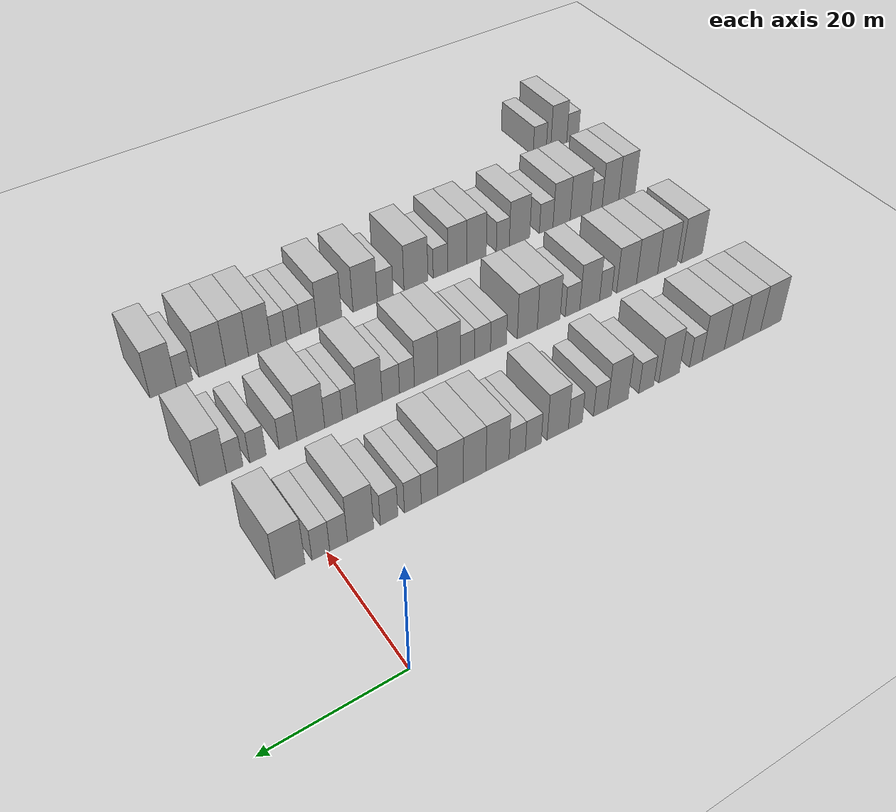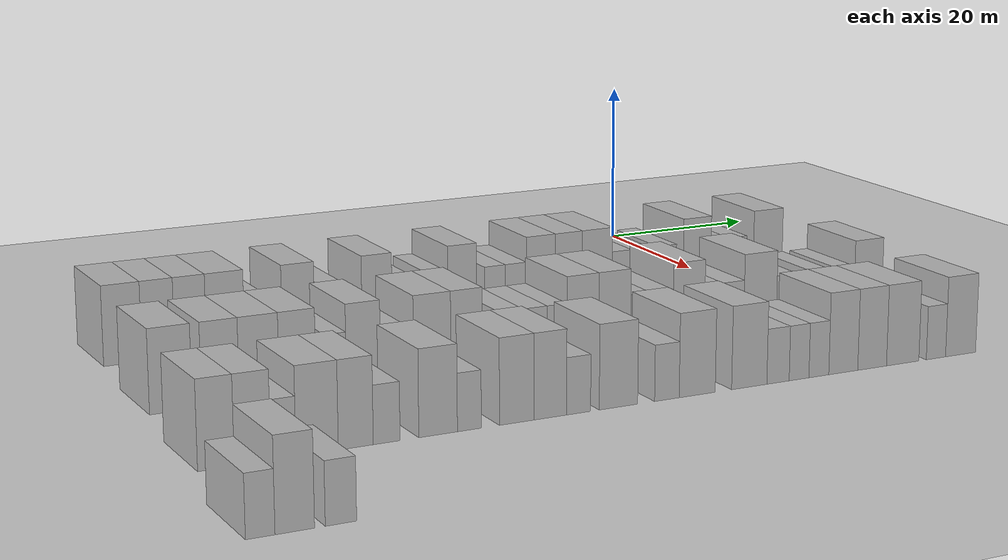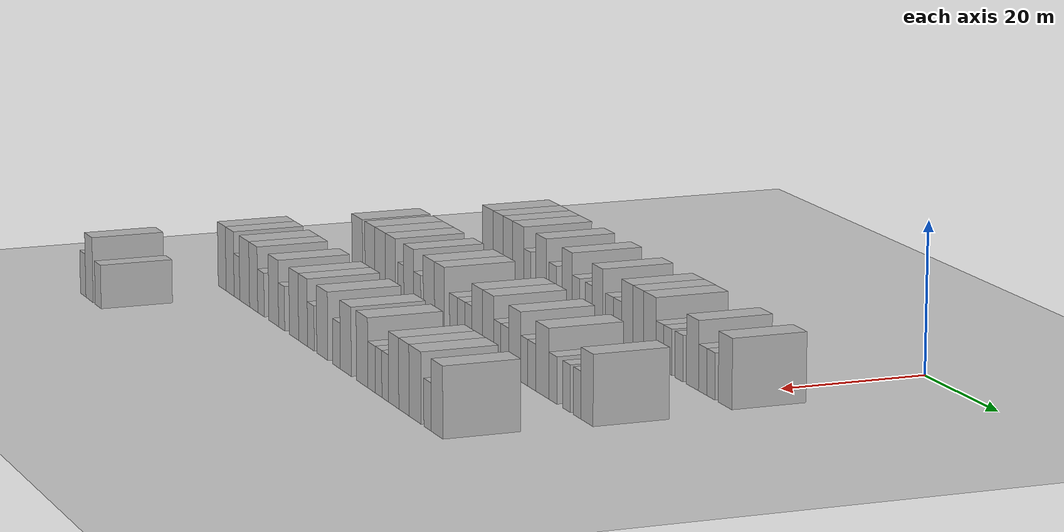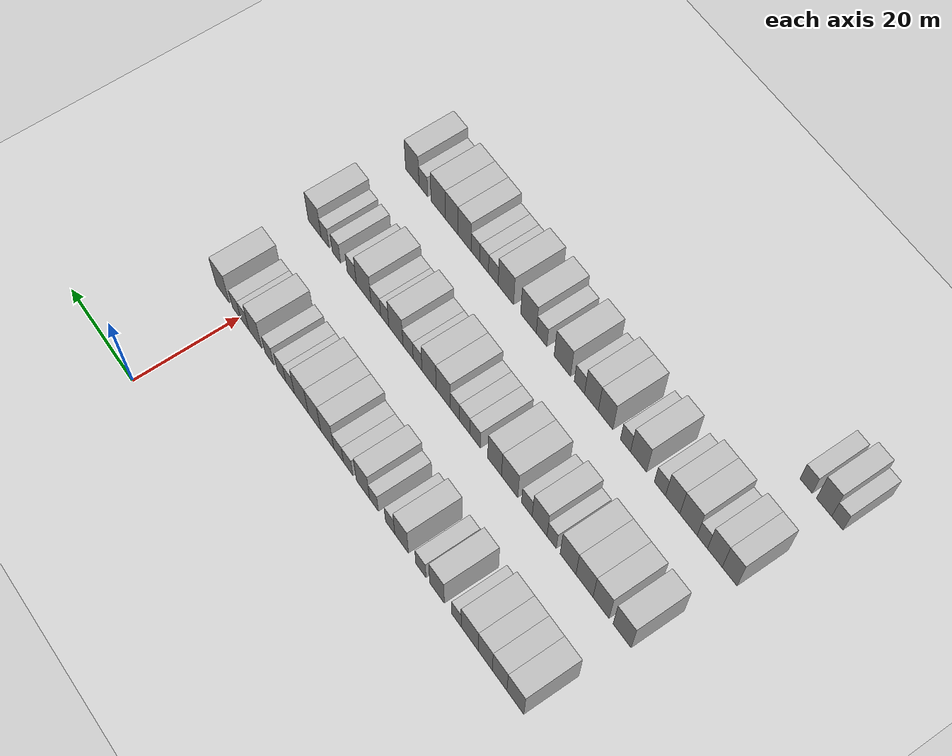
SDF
<sdf version="1.6">
 <world name="default">
  <include><name>ground_plane_1</name><uri>model://HANNAS_ground_plane</uri></include>
  <model name="building_55">
   <static>1</static>
   <pose>25.0000 -77.3896 0 0.000000 0.000000 0.000000</pose>
   <link name="link">
    <pose>0 0 4.50 0 0 0</pose>
    <collision name="collision"><geometry><box><size>10.0000 4.2941 9.0000</size></box></geometry></collision>
    <visual name="visual">
     <cast_shadows>0</cast_shadows>
     <geometry><box><size>10.0000 4.2941 9.0000</size></box></geometry>
     <material>
      <script>
       <uri>model://HANNAS_wall/materials/scripts</uri>
       <uri>model://HANNAS_wall/materials/textures</uri>
       <name>vrc/HANNAS_wall</name>
      </script>
     </material>
    </visual>
   </link>
  </model>
  <model name="building_56">
   <static>1</static>
   <pose>25.0000 -73.3744 0 0.000000 0.000000 0.000000</pose>
   <link name="link">
    <pose>0 0 4.50 0 0 0</pose>
    <collision name="collision"><geometry><box><size>10.0000 3.7363 9.0000</size></box></geometry></collision>
    <visual name="visual">
     <cast_shadows>0</cast_shadows>
     <geometry><box><size>10.0000 3.7363 9.0000</size></box></geometry>
     <material>
      <script>
       <uri>model://HANNAS_wall/materials/scripts</uri>
       <uri>model://HANNAS_wall/materials/textures</uri>
       <name>vrc/HANNAS_wall</name>
      </script>
     </material>
    </visual>
   </link>
  </model>
  <model name="building_57">
   <static>1</static>
   <pose>25.0000 -69.6779 0 0.000000 0.000000 0.000000</pose>
   <link name="link">
    <pose>0 0 4.50 0 0 0</pose>
    <collision name="collision"><geometry><box><size>10.0000 3.6568 9.0000</size></box></geometry></collision>
    <visual name="visual">
     <cast_shadows>0</cast_shadows>
     <geometry><box><size>10.0000 3.6568 9.0000</size></box></geometry>
     <material>
      <script>
       <uri>model://HANNAS_wall/materials/scripts</uri>
       <uri>model://HANNAS_wall/materials/textures</uri>
       <name>vrc/HANNAS_wall</name>
      </script>
     </material>
    </visual>
   </link>
  </model>
  <model name="building_58">
   <static>1</static>
   <pose>25.0000 -65.6266 0 0.000000 0.000000 0.000000</pose>
   <link name="link">
    <pose>0 0 4.50 0 0 0</pose>
    <collision name="collision"><geometry><box><size>10.0000 4.4459 9.0000</size></box></geometry></collision>
    <visual name="visual">
     <cast_shadows>0</cast_shadows>
     <geometry><box><size>10.0000 4.4459 9.0000</size></box></geometry>
     <material>
      <script>
       <uri>model://HANNAS_wall/materials/scripts</uri>
       <uri>model://HANNAS_wall/materials/textures</uri>
       <name>vrc/HANNAS_wall</name>
      </script>
     </material>
    </visual>
   </link>
  </model>
  <model name="building_59">
   <static>1</static>
   <pose>25.0000 -62.1754 0 0.000000 0.000000 0.000000</pose>
   <link name="link">
    <pose>0 0 3.00 0 0 0</pose>
    <collision name="collision"><geometry><box><size>10.0000 2.4565 6.0000</size></box></geometry></collision>
    <visual name="visual">
     <cast_shadows>0</cast_shadows>
     <geometry><box><size>10.0000 2.4565 6.0000</size></box></geometry>
     <material>
      <script>
       <uri>model://HANNAS_wall/materials/scripts</uri>
       <uri>model://HANNAS_wall/materials/textures</uri>
       <name>vrc/HANNAS_wall</name>
      </script>
     </material>
    </visual>
   </link>
  </model>
  <model name="building_60">
   <static>1</static>
   <pose>25.0000 -56.9956 0 0.000000 0.000000 0.000000</pose>
   <link name="link">
    <pose>0 0 4.50 0 0 0</pose>
    <collision name="collision"><geometry><box><size>10.0000 3.9030 9.0000</size></box></geometry></collision>
    <visual name="visual">
     <cast_shadows>0</cast_shadows>
     <geometry><box><size>10.0000 3.9030 9.0000</size></box></geometry>
     <material>
      <script>
       <uri>model://HANNAS_wall/materials/scripts</uri>
       <uri>model://HANNAS_wall/materials/textures</uri>
       <name>vrc/HANNAS_wall</name>
      </script>
     </material>
    </visual>
   </link>
  </model>
  <model name="building_61">
   <static>1</static>
   <pose>25.0000 -52.6533 0 0.000000 0.000000 0.000000</pose>
   <link name="link">
    <pose>0 0 3.00 0 0 0</pose>
    <collision name="collision"><geometry><box><size>10.0000 2.7818 6.0000</size></box></geometry></collision>
    <visual name="visual">
     <cast_shadows>0</cast_shadows>
     <geometry><box><size>10.0000 2.7818 6.0000</size></box></geometry>
     <material>
      <script>
       <uri>model://HANNAS_wall/materials/scripts</uri>
       <uri>model://HANNAS_wall/materials/textures</uri>
       <name>vrc/HANNAS_wall</name>
      </script>
     </material>
    </visual>
   </link>
  </model>
  <model name="building_62">
   <static>1</static>
   <pose>25.0000 -47.3935 0 0.000000 0.000000 0.000000</pose>
   <link name="link">
    <pose>0 0 4.50 0 0 0</pose>
    <collision name="collision"><geometry><box><size>10.0000 3.7377 9.0000</size></box></geometry></collision>
    <visual name="visual">
     <cast_shadows>0</cast_shadows>
     <geometry><box><size>10.0000 3.7377 9.0000</size></box></geometry>
     <material>
      <script>
       <uri>model://HANNAS_wall/materials/scripts</uri>
       <uri>model://HANNAS_wall/materials/textures</uri>
       <name>vrc/HANNAS_wall</name>
      </script>
     </material>
    </visual>
   </link>
  </model>
  <model name="building_63">
   <static>1</static>
   <pose>25.0000 -44.2400 0 0.000000 0.000000 0.000000</pose>
   <link name="link">
    <pose>0 0 3.00 0 0 0</pose>
    <collision name="collision"><geometry><box><size>10.0000 2.5693 6.0000</size></box></geometry></collision>
    <visual name="visual">
     <cast_shadows>0</cast_shadows>
     <geometry><box><size>10.0000 2.5693 6.0000</size></box></geometry>
     <material>
      <script>
       <uri>model://HANNAS_wall/materials/scripts</uri>
       <uri>model://HANNAS_wall/materials/textures</uri>
       <name>vrc/HANNAS_wall</name>
      </script>
     </material>
    </visual>
   </link>
  </model>
  <model name="building_64">
   <static>1</static>
   <pose>25.0000 -39.7307 0 0.000000 0.000000 0.000000</pose>
   <link name="link">
    <pose>0 0 3.00 0 0 0</pose>
    <collision name="collision"><geometry><box><size>10.0000 2.4493 6.0000</size></box></geometry></collision>
    <visual name="visual">
     <cast_shadows>0</cast_shadows>
     <geometry><box><size>10.0000 2.4493 6.0000</size></box></geometry>
     <material>
      <script>
       <uri>model://HANNAS_wall/materials/scripts</uri>
       <uri>model://HANNAS_wall/materials/textures</uri>
       <name>vrc/HANNAS_wall</name>
      </script>
     </material>
    </visual>
   </link>
  </model>
  <model name="building_65">
   <static>1</static>
   <pose>25.0000 -36.6411 0 0.000000 0.000000 0.000000</pose>
   <link name="link">
    <pose>0 0 4.50 0 0 0</pose>
    <collision name="collision"><geometry><box><size>10.0000 3.7300 9.0000</size></box></geometry></collision>
    <visual name="visual">
     <cast_shadows>0</cast_shadows>
     <geometry><box><size>10.0000 3.7300 9.0000</size></box></geometry>
     <material>
      <script>
       <uri>model://HANNAS_wall/materials/scripts</uri>
       <uri>model://HANNAS_wall/materials/textures</uri>
       <name>vrc/HANNAS_wall</name>
      </script>
     </material>
    </visual>
   </link>
  </model>
  <model name="building_66">
   <static>1</static>
   <pose>25.0000 -32.4248 0 0.000000 0.000000 0.000000</pose>
   <link name="link">
    <pose>0 0 3.00 0 0 0</pose>
    <collision name="collision"><geometry><box><size>10.0000 2.7026 6.0000</size></box></geometry></collision>
    <visual name="visual">
     <cast_shadows>0</cast_shadows>
     <geometry><box><size>10.0000 2.7026 6.0000</size></box></geometry>
     <material>
      <script>
       <uri>model://HANNAS_wall/materials/scripts</uri>
       <uri>model://HANNAS_wall/materials/textures</uri>
       <name>vrc/HANNAS_wall</name>
      </script>
     </material>
    </visual>
   </link>
  </model>
  <model name="building_67">
   <static>1</static>
   <pose>25.0000 -29.6952 0 0.000000 0.000000 0.000000</pose>
   <link name="link">
    <pose>0 0 3.00 0 0 0</pose>
    <collision name="collision"><geometry><box><size>10.0000 2.7568 6.0000</size></box></geometry></collision>
    <visual name="visual">
     <cast_shadows>0</cast_shadows>
     <geometry><box><size>10.0000 2.7568 6.0000</size></box></geometry>
     <material>
      <script>
       <uri>model://HANNAS_wall/materials/scripts</uri>
       <uri>model://HANNAS_wall/materials/textures</uri>
       <name>vrc/HANNAS_wall</name>
      </script>
     </material>
    </visual>
   </link>
  </model>
  <model name="building_68">
   <static>1</static>
   <pose>25.0000 -26.3937 0 0.000000 0.000000 0.000000</pose>
   <link name="link">
    <pose>0 0 4.50 0 0 0</pose>
    <collision name="collision"><geometry><box><size>10.0000 3.8461 9.0000</size></box></geometry></collision>
    <visual name="visual">
     <cast_shadows>0</cast_shadows>
     <geometry><box><size>10.0000 3.8461 9.0000</size></box></geometry>
     <material>
      <script>
       <uri>model://HANNAS_wall/materials/scripts</uri>
       <uri>model://HANNAS_wall/materials/textures</uri>
       <name>vrc/HANNAS_wall</name>
      </script>
     </material>
    </visual>
   </link>
  </model>
  <model name="building_69">
   <static>1</static>
   <pose>25.0000 -22.6545 0 0.000000 0.000000 0.000000</pose>
   <link name="link">
    <pose>0 0 4.50 0 0 0</pose>
    <collision name="collision"><geometry><box><size>10.0000 3.6325 9.0000</size></box></geometry></collision>
    <visual name="visual">
     <cast_shadows>0</cast_shadows>
     <geometry><box><size>10.0000 3.6325 9.0000</size></box></geometry>
     <material>
      <script>
       <uri>model://HANNAS_wall/materials/scripts</uri>
       <uri>model://HANNAS_wall/materials/textures</uri>
       <name>vrc/HANNAS_wall</name>
      </script>
     </material>
    </visual>
   </link>
  </model>
  <model name="building_70">
   <static>1</static>
   <pose>25.0000 -18.7950 0 0.000000 0.000000 0.000000</pose>
   <link name="link">
    <pose>0 0 4.50 0 0 0</pose>
    <collision name="collision"><geometry><box><size>10.0000 4.0864 9.0000</size></box></geometry></collision>
    <visual name="visual">
     <cast_shadows>0</cast_shadows>
     <geometry><box><size>10.0000 4.0864 9.0000</size></box></geometry>
     <material>
      <script>
       <uri>model://HANNAS_wall/materials/scripts</uri>
       <uri>model://HANNAS_wall/materials/textures</uri>
       <name>vrc/HANNAS_wall</name>
      </script>
     </material>
    </visual>
   </link>
  </model>
  <model name="building_71">
   <static>1</static>
   <pose>25.0000 -15.4544 0 0.000000 0.000000 0.000000</pose>
   <link name="link">
    <pose>0 0 3.00 0 0 0</pose>
    <collision name="collision"><geometry><box><size>10.0000 2.5948 6.0000</size></box></geometry></collision>
    <visual name="visual">
     <cast_shadows>0</cast_shadows>
     <geometry><box><size>10.0000 2.5948 6.0000</size></box></geometry>
     <material>
      <script>
       <uri>model://HANNAS_wall/materials/scripts</uri>
       <uri>model://HANNAS_wall/materials/textures</uri>
       <name>vrc/HANNAS_wall</name>
      </script>
     </material>
    </visual>
   </link>
  </model>
  <model name="building_72">
   <static>1</static>
   <pose>25.0000 -12.8511 0 0.000000 0.000000 0.000000</pose>
   <link name="link">
    <pose>0 0 3.00 0 0 0</pose>
    <collision name="collision"><geometry><box><size>10.0000 2.6118 6.0000</size></box></geometry></collision>
    <visual name="visual">
     <cast_shadows>0</cast_shadows>
     <geometry><box><size>10.0000 2.6118 6.0000</size></box></geometry>
     <material>
      <script>
       <uri>model://HANNAS_wall/materials/scripts</uri>
       <uri>model://HANNAS_wall/materials/textures</uri>
       <name>vrc/HANNAS_wall</name>
      </script>
     </material>
    </visual>
   </link>
  </model>
  <model name="building_73">
   <static>1</static>
   <pose>25.0000 -9.2134 0 0.000000 0.000000 0.000000</pose>
   <link name="link">
    <pose>0 0 3.00 0 0 0</pose>
    <collision name="collision"><geometry><box><size>10.0000 2.6637 6.0000</size></box></geometry></collision>
    <visual name="visual">
     <cast_shadows>0</cast_shadows>
     <geometry><box><size>10.0000 2.6637 6.0000</size></box></geometry>
     <material>
      <script>
       <uri>model://HANNAS_wall/materials/scripts</uri>
       <uri>model://HANNAS_wall/materials/textures</uri>
       <name>vrc/HANNAS_wall</name>
      </script>
     </material>
    </visual>
   </link>
  </model>
  <model name="building_74">
   <static>1</static>
   <pose>25.0000 -4.9287 0 0.000000 0.000000 0.000000</pose>
   <link name="link">
    <pose>0 0 4.50 0 0 0</pose>
    <collision name="collision"><geometry><box><size>10.0000 3.9057 9.0000</size></box></geometry></collision>
    <visual name="visual">
     <cast_shadows>0</cast_shadows>
     <geometry><box><size>10.0000 3.9057 9.0000</size></box></geometry>
     <material>
      <script>
       <uri>model://HANNAS_wall/materials/scripts</uri>
       <uri>model://HANNAS_wall/materials/textures</uri>
       <name>vrc/HANNAS_wall</name>
      </script>
     </material>
    </visual>
   </link>
  </model>
  <model name="building_75">
   <static>1</static>
   <pose>25.0000 -1.6831 0 0.000000 0.000000 0.000000</pose>
   <link name="link">
    <pose>0 0 3.00 0 0 0</pose>
    <collision name="collision"><geometry><box><size>10.0000 2.5856 6.0000</size></box></geometry></collision>
    <visual name="visual">
     <cast_shadows>0</cast_shadows>
     <geometry><box><size>10.0000 2.5856 6.0000</size></box></geometry>
     <material>
      <script>
       <uri>model://HANNAS_wall/materials/scripts</uri>
       <uri>model://HANNAS_wall/materials/textures</uri>
       <name>vrc/HANNAS_wall</name>
      </script>
     </material>
    </visual>
   </link>
  </model>
  <model name="building_76">
   <static>1</static>
   <pose>25.0000 0.8925 0 0.000000 0.000000 0.000000</pose>
   <link name="link">
    <pose>0 0 3.00 0 0 0</pose>
    <collision name="collision"><geometry><box><size>10.0000 2.5656 6.0000</size></box></geometry></collision>
    <visual name="visual">
     <cast_shadows>0</cast_shadows>
     <geometry><box><size>10.0000 2.5656 6.0000</size></box></geometry>
     <material>
      <script>
       <uri>model://HANNAS_wall/materials/scripts</uri>
       <uri>model://HANNAS_wall/materials/textures</uri>
       <name>vrc/HANNAS_wall</name>
      </script>
     </material>
    </visual>
   </link>
  </model>
  <model name="building_77">
   <static>1</static>
   <pose>25.0000 5.2809 0 0.000000 0.000000 0.000000</pose>
   <link name="link">
    <pose>0 0 4.50 0 0 0</pose>
    <collision name="collision"><geometry><box><size>10.0000 4.2112 9.0000</size></box></geometry></collision>
    <visual name="visual">
     <cast_shadows>0</cast_shadows>
     <geometry><box><size>10.0000 4.2112 9.0000</size></box></geometry>
     <material>
      <script>
       <uri>model://HANNAS_wall/materials/scripts</uri>
       <uri>model://HANNAS_wall/materials/textures</uri>
       <name>vrc/HANNAS_wall</name>
      </script>
     </material>
    </visual>
   </link>
  </model>
  <model name="building_224">
   <static>1</static>
   <pose>44.0000 -78.2533 0 0.000000 0.000000 0.000000</pose>
   <link name="link">
    <pose>0 0 4.50 0 0 0</pose>
    <collision name="collision"><geometry><box><size>10.0000 4.5000 9.0000</size></box></geometry></collision>
    <visual name="visual">
     <cast_shadows>0</cast_shadows>
     <geometry><box><size>10.0000 4.5000 9.0000</size></box></geometry>
     <material>
      <script>
       <uri>model://HANNAS_wall/materials/scripts</uri>
       <uri>model://HANNAS_wall/materials/textures</uri>
       <name>vrc/HANNAS_wall</name>
      </script>
     </material>
    </visual>
   </link>
  </model>
  <model name="building_225">
   <static>1</static>
   <pose>44.0000 -72.9720 0 0.000000 0.000000 0.000000</pose>
   <link name="link">
    <pose>0 0 4.50 0 0 0</pose>
    <collision name="collision"><geometry><box><size>10.0000 4.0626 9.0000</size></box></geometry></collision>
    <visual name="visual">
     <cast_shadows>0</cast_shadows>
     <geometry><box><size>10.0000 4.0626 9.0000</size></box></geometry>
     <material>
      <script>
       <uri>model://HANNAS_wall/materials/scripts</uri>
       <uri>model://HANNAS_wall/materials/textures</uri>
       <name>vrc/HANNAS_wall</name>
      </script>
     </material>
    </visual>
   </link>
  </model>
  <model name="building_226">
   <static>1</static>
   <pose>44.0000 -68.7550 0 0.000000 0.000000 0.000000</pose>
   <link name="link">
    <pose>0 0 4.50 0 0 0</pose>
    <collision name="collision"><geometry><box><size>10.0000 4.3714 9.0000</size></box></geometry></collision>
    <visual name="visual">
     <cast_shadows>0</cast_shadows>
     <geometry><box><size>10.0000 4.3714 9.0000</size></box></geometry>
     <material>
      <script>
       <uri>model://HANNAS_wall/materials/scripts</uri>
       <uri>model://HANNAS_wall/materials/textures</uri>
       <name>vrc/HANNAS_wall</name>
      </script>
     </material>
    </visual>
   </link>
  </model>
  <model name="building_227">
   <static>1</static>
   <pose>44.0000 -64.5370 0 0.000000 0.000000 0.000000</pose>
   <link name="link">
    <pose>0 0 4.50 0 0 0</pose>
    <collision name="collision"><geometry><box><size>10.0000 4.0646 9.0000</size></box></geometry></collision>
    <visual name="visual">
     <cast_shadows>0</cast_shadows>
     <geometry><box><size>10.0000 4.0646 9.0000</size></box></geometry>
     <material>
      <script>
       <uri>model://HANNAS_wall/materials/scripts</uri>
       <uri>model://HANNAS_wall/materials/textures</uri>
       <name>vrc/HANNAS_wall</name>
      </script>
     </material>
    </visual>
   </link>
  </model>
  <model name="building_228">
   <static>1</static>
   <pose>44.0000 -60.2954 0 0.000000 0.000000 0.000000</pose>
   <link name="link">
    <pose>0 0 3.00 0 0 0</pose>
    <collision name="collision"><geometry><box><size>10.0000 2.4185 6.0000</size></box></geometry></collision>
    <visual name="visual">
     <cast_shadows>0</cast_shadows>
     <geometry><box><size>10.0000 2.4185 6.0000</size></box></geometry>
     <material>
      <script>
       <uri>model://HANNAS_wall/materials/scripts</uri>
       <uri>model://HANNAS_wall/materials/textures</uri>
       <name>vrc/HANNAS_wall</name>
      </script>
     </material>
    </visual>
   </link>
  </model>
  <model name="building_229">
   <static>1</static>
   <pose>44.0000 -57.1357 0 0.000000 0.000000 0.000000</pose>
   <link name="link">
    <pose>0 0 4.50 0 0 0</pose>
    <collision name="collision"><geometry><box><size>10.0000 3.9009 9.0000</size></box></geometry></collision>
    <visual name="visual">
     <cast_shadows>0</cast_shadows>
     <geometry><box><size>10.0000 3.9009 9.0000</size></box></geometry>
     <material>
      <script>
       <uri>model://HANNAS_wall/materials/scripts</uri>
       <uri>model://HANNAS_wall/materials/textures</uri>
       <name>vrc/HANNAS_wall</name>
      </script>
     </material>
    </visual>
   </link>
  </model>
  <model name="building_230">
   <static>1</static>
   <pose>44.0000 -53.7771 0 0.000000 0.000000 0.000000</pose>
   <link name="link">
    <pose>0 0 3.00 0 0 0</pose>
    <collision name="collision"><geometry><box><size>10.0000 2.8164 6.0000</size></box></geometry></collision>
    <visual name="visual">
     <cast_shadows>0</cast_shadows>
     <geometry><box><size>10.0000 2.8164 6.0000</size></box></geometry>
     <material>
      <script>
       <uri>model://HANNAS_wall/materials/scripts</uri>
       <uri>model://HANNAS_wall/materials/textures</uri>
       <name>vrc/HANNAS_wall</name>
      </script>
     </material>
    </visual>
   </link>
  </model>
  <model name="building_231">
   <static>1</static>
   <pose>44.0000 -49.1851 0 0.000000 0.000000 0.000000</pose>
   <link name="link">
    <pose>0 0 4.50 0 0 0</pose>
    <collision name="collision"><geometry><box><size>10.0000 4.3675 9.0000</size></box></geometry></collision>
    <visual name="visual">
     <cast_shadows>0</cast_shadows>
     <geometry><box><size>10.0000 4.3675 9.0000</size></box></geometry>
     <material>
      <script>
       <uri>model://HANNAS_wall/materials/scripts</uri>
       <uri>model://HANNAS_wall/materials/textures</uri>
       <name>vrc/HANNAS_wall</name>
      </script>
     </material>
    </visual>
   </link>
  </model>
  <model name="building_232">
   <static>1</static>
   <pose>44.0000 -45.1270 0 0.000000 0.000000 0.000000</pose>
   <link name="link">
    <pose>0 0 4.50 0 0 0</pose>
    <collision name="collision"><geometry><box><size>10.0000 3.7488 9.0000</size></box></geometry></collision>
    <visual name="visual">
     <cast_shadows>0</cast_shadows>
     <geometry><box><size>10.0000 3.7488 9.0000</size></box></geometry>
     <material>
      <script>
       <uri>model://HANNAS_wall/materials/scripts</uri>
       <uri>model://HANNAS_wall/materials/textures</uri>
       <name>vrc/HANNAS_wall</name>
      </script>
     </material>
    </visual>
   </link>
  </model>
  <model name="building_233">
   <static>1</static>
   <pose>44.0000 -39.7939 0 0.000000 0.000000 0.000000</pose>
   <link name="link">
    <pose>0 0 3.00 0 0 0</pose>
    <collision name="collision"><geometry><box><size>10.0000 2.9174 6.0000</size></box></geometry></collision>
    <visual name="visual">
     <cast_shadows>0</cast_shadows>
     <geometry><box><size>10.0000 2.9174 6.0000</size></box></geometry>
     <material>
      <script>
       <uri>model://HANNAS_wall/materials/scripts</uri>
       <uri>model://HANNAS_wall/materials/textures</uri>
       <name>vrc/HANNAS_wall</name>
      </script>
     </material>
    </visual>
   </link>
  </model>
  <model name="building_234">
   <static>1</static>
   <pose>44.0000 -36.8785 0 0.000000 0.000000 0.000000</pose>
   <link name="link">
    <pose>0 0 3.00 0 0 0</pose>
    <collision name="collision"><geometry><box><size>10.0000 2.9134 6.0000</size></box></geometry></collision>
    <visual name="visual">
     <cast_shadows>0</cast_shadows>
     <geometry><box><size>10.0000 2.9134 6.0000</size></box></geometry>
     <material>
      <script>
       <uri>model://HANNAS_wall/materials/scripts</uri>
       <uri>model://HANNAS_wall/materials/textures</uri>
       <name>vrc/HANNAS_wall</name>
      </script>
     </material>
    </visual>
   </link>
  </model>
  <model name="building_235">
   <static>1</static>
   <pose>44.0000 -34.1963 0 0.000000 0.000000 0.000000</pose>
   <link name="link">
    <pose>0 0 3.00 0 0 0</pose>
    <collision name="collision"><geometry><box><size>10.0000 2.4510 6.0000</size></box></geometry></collision>
    <visual name="visual">
     <cast_shadows>0</cast_shadows>
     <geometry><box><size>10.0000 2.4510 6.0000</size></box></geometry>
     <material>
      <script>
       <uri>model://HANNAS_wall/materials/scripts</uri>
       <uri>model://HANNAS_wall/materials/textures</uri>
       <name>vrc/HANNAS_wall</name>
      </script>
     </material>
    </visual>
   </link>
  </model>
  <model name="building_236">
   <static>1</static>
   <pose>44.0000 -30.9734 0 0.000000 0.000000 0.000000</pose>
   <link name="link">
    <pose>0 0 4.50 0 0 0</pose>
    <collision name="collision"><geometry><box><size>10.0000 3.9948 9.0000</size></box></geometry></collision>
    <visual name="visual">
     <cast_shadows>0</cast_shadows>
     <geometry><box><size>10.0000 3.9948 9.0000</size></box></geometry>
     <material>
      <script>
       <uri>model://HANNAS_wall/materials/scripts</uri>
       <uri>model://HANNAS_wall/materials/textures</uri>
       <name>vrc/HANNAS_wall</name>
      </script>
     </material>
    </visual>
   </link>
  </model>
  <model name="building_237">
   <static>1</static>
   <pose>44.0000 -26.9555 0 0.000000 0.000000 0.000000</pose>
   <link name="link">
    <pose>0 0 4.50 0 0 0</pose>
    <collision name="collision"><geometry><box><size>10.0000 4.0410 9.0000</size></box></geometry></collision>
    <visual name="visual">
     <cast_shadows>0</cast_shadows>
     <geometry><box><size>10.0000 4.0410 9.0000</size></box></geometry>
     <material>
      <script>
       <uri>model://HANNAS_wall/materials/scripts</uri>
       <uri>model://HANNAS_wall/materials/textures</uri>
       <name>vrc/HANNAS_wall</name>
      </script>
     </material>
    </visual>
   </link>
  </model>
  <model name="building_238">
   <static>1</static>
   <pose>44.0000 -23.6707 0 0.000000 0.000000 0.000000</pose>
   <link name="link">
    <pose>0 0 3.00 0 0 0</pose>
    <collision name="collision"><geometry><box><size>10.0000 2.5285 6.0000</size></box></geometry></collision>
    <visual name="visual">
     <cast_shadows>0</cast_shadows>
     <geometry><box><size>10.0000 2.5285 6.0000</size></box></geometry>
     <material>
      <script>
       <uri>model://HANNAS_wall/materials/scripts</uri>
       <uri>model://HANNAS_wall/materials/textures</uri>
       <name>vrc/HANNAS_wall</name>
      </script>
     </material>
    </visual>
   </link>
  </model>
  <model name="building_239">
   <static>1</static>
   <pose>44.0000 -20.9476 0 0.000000 0.000000 0.000000</pose>
   <link name="link">
    <pose>0 0 3.00 0 0 0</pose>
    <collision name="collision"><geometry><box><size>10.0000 2.9177 6.0000</size></box></geometry></collision>
    <visual name="visual">
     <cast_shadows>0</cast_shadows>
     <geometry><box><size>10.0000 2.9177 6.0000</size></box></geometry>
     <material>
      <script>
       <uri>model://HANNAS_wall/materials/scripts</uri>
       <uri>model://HANNAS_wall/materials/textures</uri>
       <name>vrc/HANNAS_wall</name>
      </script>
     </material>
    </visual>
   </link>
  </model>
  <model name="building_240">
   <static>1</static>
   <pose>44.0000 -17.4233 0 0.000000 0.000000 0.000000</pose>
   <link name="link">
    <pose>0 0 4.50 0 0 0</pose>
    <collision name="collision"><geometry><box><size>10.0000 4.1310 9.0000</size></box></geometry></collision>
    <visual name="visual">
     <cast_shadows>0</cast_shadows>
     <geometry><box><size>10.0000 4.1310 9.0000</size></box></geometry>
     <material>
      <script>
       <uri>model://HANNAS_wall/materials/scripts</uri>
       <uri>model://HANNAS_wall/materials/textures</uri>
       <name>vrc/HANNAS_wall</name>
      </script>
     </material>
    </visual>
   </link>
  </model>
  <model name="building_241">
   <static>1</static>
   <pose>44.0000 -14.1545 0 0.000000 0.000000 0.000000</pose>
   <link name="link">
    <pose>0 0 3.00 0 0 0</pose>
    <collision name="collision"><geometry><box><size>10.0000 2.4065 6.0000</size></box></geometry></collision>
    <visual name="visual">
     <cast_shadows>0</cast_shadows>
     <geometry><box><size>10.0000 2.4065 6.0000</size></box></geometry>
     <material>
      <script>
       <uri>model://HANNAS_wall/materials/scripts</uri>
       <uri>model://HANNAS_wall/materials/textures</uri>
       <name>vrc/HANNAS_wall</name>
      </script>
     </material>
    </visual>
   </link>
  </model>
  <model name="building_242">
   <static>1</static>
   <pose>44.0000 -11.5362 0 0.000000 0.000000 0.000000</pose>
   <link name="link">
    <pose>0 0 3.00 0 0 0</pose>
    <collision name="collision"><geometry><box><size>10.0000 2.8301 6.0000</size></box></geometry></collision>
    <visual name="visual">
     <cast_shadows>0</cast_shadows>
     <geometry><box><size>10.0000 2.8301 6.0000</size></box></geometry>
     <material>
      <script>
       <uri>model://HANNAS_wall/materials/scripts</uri>
       <uri>model://HANNAS_wall/materials/textures</uri>
       <name>vrc/HANNAS_wall</name>
      </script>
     </material>
    </visual>
   </link>
  </model>
  <model name="building_243">
   <static>1</static>
   <pose>44.0000 -7.9214 0 0.000000 0.000000 0.000000</pose>
   <link name="link">
    <pose>0 0 4.50 0 0 0</pose>
    <collision name="collision"><geometry><box><size>10.0000 4.3995 9.0000</size></box></geometry></collision>
    <visual name="visual">
     <cast_shadows>0</cast_shadows>
     <geometry><box><size>10.0000 4.3995 9.0000</size></box></geometry>
     <material>
      <script>
       <uri>model://HANNAS_wall/materials/scripts</uri>
       <uri>model://HANNAS_wall/materials/textures</uri>
       <name>vrc/HANNAS_wall</name>
      </script>
     </material>
    </visual>
   </link>
  </model>
  <model name="building_244">
   <static>1</static>
   <pose>44.0000 -4.3332 0 0.000000 0.000000 0.000000</pose>
   <link name="link">
    <pose>0 0 3.00 0 0 0</pose>
    <collision name="collision"><geometry><box><size>10.0000 2.7769 6.0000</size></box></geometry></collision>
    <visual name="visual">
     <cast_shadows>0</cast_shadows>
     <geometry><box><size>10.0000 2.7769 6.0000</size></box></geometry>
     <material>
      <script>
       <uri>model://HANNAS_wall/materials/scripts</uri>
       <uri>model://HANNAS_wall/materials/textures</uri>
       <name>vrc/HANNAS_wall</name>
      </script>
     </material>
    </visual>
   </link>
  </model>
  <model name="building_245">
   <static>1</static>
   <pose>44.0000 0.2979 0 0.000000 0.000000 0.000000</pose>
   <link name="link">
    <pose>0 0 3.00 0 0 0</pose>
    <collision name="collision"><geometry><box><size>10.0000 2.4855 6.0000</size></box></geometry></collision>
    <visual name="visual">
     <cast_shadows>0</cast_shadows>
     <geometry><box><size>10.0000 2.4855 6.0000</size></box></geometry>
     <material>
      <script>
       <uri>model://HANNAS_wall/materials/scripts</uri>
       <uri>model://HANNAS_wall/materials/textures</uri>
       <name>vrc/HANNAS_wall</name>
      </script>
     </material>
    </visual>
   </link>
  </model>
  <model name="building_246">
   <static>1</static>
   <pose>44.0000 3.7683 0 0.000000 0.000000 0.000000</pose>
   <link name="link">
    <pose>0 0 3.00 0 0 0</pose>
    <collision name="collision"><geometry><box><size>10.0000 2.4552 6.0000</size></box></geometry></collision>
    <visual name="visual">
     <cast_shadows>0</cast_shadows>
     <geometry><box><size>10.0000 2.4552 6.0000</size></box></geometry>
     <material>
      <script>
       <uri>model://HANNAS_wall/materials/scripts</uri>
       <uri>model://HANNAS_wall/materials/textures</uri>
       <name>vrc/HANNAS_wall</name>
      </script>
     </material>
    </visual>
   </link>
  </model>
  <model name="building_247">
   <static>1</static>
   <pose>44.0000 6.9807 0 0.000000 0.000000 0.000000</pose>
   <link name="link">
    <pose>0 0 4.50 0 0 0</pose>
    <collision name="collision"><geometry><box><size>10.0000 3.9696 9.0000</size></box></geometry></collision>
    <visual name="visual">
     <cast_shadows>0</cast_shadows>
     <geometry><box><size>10.0000 3.9696 9.0000</size></box></geometry>
     <material>
      <script>
       <uri>model://HANNAS_wall/materials/scripts</uri>
       <uri>model://HANNAS_wall/materials/textures</uri>
       <name>vrc/HANNAS_wall</name>
      </script>
     </material>
    </visual>
   </link>
  </model>
  <model name="building_396">
   <static>1</static>
   <pose>63.0000 -80.1545 0 0.000000 0.000000 0.000000</pose>
   <link name="link">
    <pose>0 0 4.50 0 0 0</pose>
    <collision name="collision"><geometry><box><size>10.0000 3.6195 9.0000</size></box></geometry></collision>
    <visual name="visual">
     <cast_shadows>0</cast_shadows>
     <geometry><box><size>10.0000 3.6195 9.0000</size></box></geometry>
     <material>
      <script>
       <uri>model://HANNAS_wall/materials/scripts</uri>
       <uri>model://HANNAS_wall/materials/textures</uri>
       <name>vrc/HANNAS_wall</name>
      </script>
     </material>
    </visual>
   </link>
  </model>
  <model name="building_397">
   <static>1</static>
   <pose>63.0000 -76.5291 0 0.000000 0.000000 0.000000</pose>
   <link name="link">
    <pose>0 0 4.50 0 0 0</pose>
    <collision name="collision"><geometry><box><size>10.0000 3.6314 9.0000</size></box></geometry></collision>
    <visual name="visual">
     <cast_shadows>0</cast_shadows>
     <geometry><box><size>10.0000 3.6314 9.0000</size></box></geometry>
     <material>
      <script>
       <uri>model://HANNAS_wall/materials/scripts</uri>
       <uri>model://HANNAS_wall/materials/textures</uri>
       <name>vrc/HANNAS_wall</name>
      </script>
     </material>
    </visual>
   </link>
  </model>
  <model name="building_398">
   <static>1</static>
   <pose>63.0000 -73.4379 0 0.000000 0.000000 0.000000</pose>
   <link name="link">
    <pose>0 0 3.00 0 0 0</pose>
    <collision name="collision"><geometry><box><size>10.0000 2.5510 6.0000</size></box></geometry></collision>
    <visual name="visual">
     <cast_shadows>0</cast_shadows>
     <geometry><box><size>10.0000 2.5510 6.0000</size></box></geometry>
     <material>
      <script>
       <uri>model://HANNAS_wall/materials/scripts</uri>
       <uri>model://HANNAS_wall/materials/textures</uri>
       <name>vrc/HANNAS_wall</name>
      </script>
     </material>
    </visual>
   </link>
  </model>
  <model name="building_399">
   <static>1</static>
   <pose>63.0000 -69.9867 0 0.000000 0.000000 0.000000</pose>
   <link name="link">
    <pose>0 0 4.50 0 0 0</pose>
    <collision name="collision"><geometry><box><size>10.0000 4.3514 9.0000</size></box></geometry></collision>
    <visual name="visual">
     <cast_shadows>0</cast_shadows>
     <geometry><box><size>10.0000 4.3514 9.0000</size></box></geometry>
     <material>
      <script>
       <uri>model://HANNAS_wall/materials/scripts</uri>
       <uri>model://HANNAS_wall/materials/textures</uri>
       <name>vrc/HANNAS_wall</name>
      </script>
     </material>
    </visual>
   </link>
  </model>
  <model name="building_400">
   <static>1</static>
   <pose>63.0000 -65.9925 0 0.000000 0.000000 0.000000</pose>
   <link name="link">
    <pose>0 0 4.50 0 0 0</pose>
    <collision name="collision"><geometry><box><size>10.0000 3.6370 9.0000</size></box></geometry></collision>
    <visual name="visual">
     <cast_shadows>0</cast_shadows>
     <geometry><box><size>10.0000 3.6370 9.0000</size></box></geometry>
     <material>
      <script>
       <uri>model://HANNAS_wall/materials/scripts</uri>
       <uri>model://HANNAS_wall/materials/textures</uri>
       <name>vrc/HANNAS_wall</name>
      </script>
     </material>
    </visual>
   </link>
  </model>
  <model name="building_401">
   <static>1</static>
   <pose>63.0000 -62.7619 0 0.000000 0.000000 0.000000</pose>
   <link name="link">
    <pose>0 0 3.00 0 0 0</pose>
    <collision name="collision"><geometry><box><size>10.0000 2.8242 6.0000</size></box></geometry></collision>
    <visual name="visual">
     <cast_shadows>0</cast_shadows>
     <geometry><box><size>10.0000 2.8242 6.0000</size></box></geometry>
     <material>
      <script>
       <uri>model://HANNAS_wall/materials/scripts</uri>
       <uri>model://HANNAS_wall/materials/textures</uri>
       <name>vrc/HANNAS_wall</name>
      </script>
     </material>
    </visual>
   </link>
  </model>
  <model name="building_402">
   <static>1</static>
   <pose>63.0000 -57.2686 0 0.000000 0.000000 0.000000</pose>
   <link name="link">
    <pose>0 0 4.50 0 0 0</pose>
    <collision name="collision"><geometry><box><size>10.0000 4.1624 9.0000</size></box></geometry></collision>
    <visual name="visual">
     <cast_shadows>0</cast_shadows>
     <geometry><box><size>10.0000 4.1624 9.0000</size></box></geometry>
     <material>
      <script>
       <uri>model://HANNAS_wall/materials/scripts</uri>
       <uri>model://HANNAS_wall/materials/textures</uri>
       <name>vrc/HANNAS_wall</name>
      </script>
     </material>
    </visual>
   </link>
  </model>
  <model name="building_403">
   <static>1</static>
   <pose>63.0000 -53.8831 0 0.000000 0.000000 0.000000</pose>
   <link name="link">
    <pose>0 0 3.00 0 0 0</pose>
    <collision name="collision"><geometry><box><size>10.0000 2.6086 6.0000</size></box></geometry></collision>
    <visual name="visual">
     <cast_shadows>0</cast_shadows>
     <geometry><box><size>10.0000 2.6086 6.0000</size></box></geometry>
     <material>
      <script>
       <uri>model://HANNAS_wall/materials/scripts</uri>
       <uri>model://HANNAS_wall/materials/textures</uri>
       <name>vrc/HANNAS_wall</name>
      </script>
     </material>
    </visual>
   </link>
  </model>
  <model name="building_404">
   <static>1</static>
   <pose>63.0000 -48.6518 0 0.000000 0.000000 0.000000</pose>
   <link name="link">
    <pose>0 0 4.50 0 0 0</pose>
    <collision name="collision"><geometry><box><size>10.0000 3.8539 9.0000</size></box></geometry></collision>
    <visual name="visual">
     <cast_shadows>0</cast_shadows>
     <geometry><box><size>10.0000 3.8539 9.0000</size></box></geometry>
     <material>
      <script>
       <uri>model://HANNAS_wall/materials/scripts</uri>
       <uri>model://HANNAS_wall/materials/textures</uri>
       <name>vrc/HANNAS_wall</name>
      </script>
     </material>
    </visual>
   </link>
  </model>
  <model name="building_405">
   <static>1</static>
   <pose>63.0000 -44.8822 0 0.000000 0.000000 0.000000</pose>
   <link name="link">
    <pose>0 0 4.50 0 0 0</pose>
    <collision name="collision"><geometry><box><size>10.0000 3.6853 9.0000</size></box></geometry></collision>
    <visual name="visual">
     <cast_shadows>0</cast_shadows>
     <geometry><box><size>10.0000 3.6853 9.0000</size></box></geometry>
     <material>
      <script>
       <uri>model://HANNAS_wall/materials/scripts</uri>
       <uri>model://HANNAS_wall/materials/textures</uri>
       <name>vrc/HANNAS_wall</name>
      </script>
     </material>
    </visual>
   </link>
  </model>
  <model name="building_406">
   <static>1</static>
   <pose>63.0000 -41.6642 0 0.000000 0.000000 0.000000</pose>
   <link name="link">
    <pose>0 0 3.00 0 0 0</pose>
    <collision name="collision"><geometry><box><size>10.0000 2.7508 6.0000</size></box></geometry></collision>
    <visual name="visual">
     <cast_shadows>0</cast_shadows>
     <geometry><box><size>10.0000 2.7508 6.0000</size></box></geometry>
     <material>
      <script>
       <uri>model://HANNAS_wall/materials/scripts</uri>
       <uri>model://HANNAS_wall/materials/textures</uri>
       <name>vrc/HANNAS_wall</name>
      </script>
     </material>
    </visual>
   </link>
  </model>
  <model name="building_407">
   <static>1</static>
   <pose>63.0000 -37.0525 0 0.000000 0.000000 0.000000</pose>
   <link name="link">
    <pose>0 0 4.50 0 0 0</pose>
    <collision name="collision"><geometry><box><size>10.0000 4.4727 9.0000</size></box></geometry></collision>
    <visual name="visual">
     <cast_shadows>0</cast_shadows>
     <geometry><box><size>10.0000 4.4727 9.0000</size></box></geometry>
     <material>
      <script>
       <uri>model://HANNAS_wall/materials/scripts</uri>
       <uri>model://HANNAS_wall/materials/textures</uri>
       <name>vrc/HANNAS_wall</name>
      </script>
     </material>
    </visual>
   </link>
  </model>
  <model name="building_408">
   <static>1</static>
   <pose>63.0000 -31.3534 0 0.000000 0.000000 0.000000</pose>
   <link name="link">
    <pose>0 0 3.00 0 0 0</pose>
    <collision name="collision"><geometry><box><size>10.0000 2.9255 6.0000</size></box></geometry></collision>
    <visual name="visual">
     <cast_shadows>0</cast_shadows>
     <geometry><box><size>10.0000 2.9255 6.0000</size></box></geometry>
     <material>
      <script>
       <uri>model://HANNAS_wall/materials/scripts</uri>
       <uri>model://HANNAS_wall/materials/textures</uri>
       <name>vrc/HANNAS_wall</name>
      </script>
     </material>
    </visual>
   </link>
  </model>
  <model name="building_409">
   <static>1</static>
   <pose>63.0000 -27.7169 0 0.000000 0.000000 0.000000</pose>
   <link name="link">
    <pose>0 0 4.50 0 0 0</pose>
    <collision name="collision"><geometry><box><size>10.0000 4.3475 9.0000</size></box></geometry></collision>
    <visual name="visual">
     <cast_shadows>0</cast_shadows>
     <geometry><box><size>10.0000 4.3475 9.0000</size></box></geometry>
     <material>
      <script>
       <uri>model://HANNAS_wall/materials/scripts</uri>
       <uri>model://HANNAS_wall/materials/textures</uri>
       <name>vrc/HANNAS_wall</name>
      </script>
     </material>
    </visual>
   </link>
  </model>
  <model name="building_410">
   <static>1</static>
   <pose>63.0000 -21.3682 0 0.000000 0.000000 0.000000</pose>
   <link name="link">
    <pose>0 0 4.50 0 0 0</pose>
    <collision name="collision"><geometry><box><size>10.0000 4.3499 9.0000</size></box></geometry></collision>
    <visual name="visual">
     <cast_shadows>0</cast_shadows>
     <geometry><box><size>10.0000 4.3499 9.0000</size></box></geometry>
     <material>
      <script>
       <uri>model://HANNAS_wall/materials/scripts</uri>
       <uri>model://HANNAS_wall/materials/textures</uri>
       <name>vrc/HANNAS_wall</name>
      </script>
     </material>
    </visual>
   </link>
  </model>
  <model name="building_411">
   <static>1</static>
   <pose>63.0000 -17.7968 0 0.000000 0.000000 0.000000</pose>
   <link name="link">
    <pose>0 0 3.00 0 0 0</pose>
    <collision name="collision"><geometry><box><size>10.0000 2.7931 6.0000</size></box></geometry></collision>
    <visual name="visual">
     <cast_shadows>0</cast_shadows>
     <geometry><box><size>10.0000 2.7931 6.0000</size></box></geometry>
     <material>
      <script>
       <uri>model://HANNAS_wall/materials/scripts</uri>
       <uri>model://HANNAS_wall/materials/textures</uri>
       <name>vrc/HANNAS_wall</name>
      </script>
     </material>
    </visual>
   </link>
  </model>
  <model name="building_412">
   <static>1</static>
   <pose>63.0000 -15.1521 0 0.000000 0.000000 0.000000</pose>
   <link name="link">
    <pose>0 0 3.00 0 0 0</pose>
    <collision name="collision"><geometry><box><size>10.0000 2.4962 6.0000</size></box></geometry></collision>
    <visual name="visual">
     <cast_shadows>0</cast_shadows>
     <geometry><box><size>10.0000 2.4962 6.0000</size></box></geometry>
     <material>
      <script>
       <uri>model://HANNAS_wall/materials/scripts</uri>
       <uri>model://HANNAS_wall/materials/textures</uri>
       <name>vrc/HANNAS_wall</name>
      </script>
     </material>
    </visual>
   </link>
  </model>
  <model name="building_413">
   <static>1</static>
   <pose>63.0000 -12.6396 0 0.000000 0.000000 0.000000</pose>
   <link name="link">
    <pose>0 0 3.00 0 0 0</pose>
    <collision name="collision"><geometry><box><size>10.0000 2.5288 6.0000</size></box></geometry></collision>
    <visual name="visual">
     <cast_shadows>0</cast_shadows>
     <geometry><box><size>10.0000 2.5288 6.0000</size></box></geometry>
     <material>
      <script>
       <uri>model://HANNAS_wall/materials/scripts</uri>
       <uri>model://HANNAS_wall/materials/textures</uri>
       <name>vrc/HANNAS_wall</name>
      </script>
     </material>
    </visual>
   </link>
  </model>
  <model name="building_414">
   <static>1</static>
   <pose>63.0000 -9.5066 0 0.000000 0.000000 0.000000</pose>
   <link name="link">
    <pose>0 0 4.50 0 0 0</pose>
    <collision name="collision"><geometry><box><size>10.0000 3.7371 9.0000</size></box></geometry></collision>
    <visual name="visual">
     <cast_shadows>0</cast_shadows>
     <geometry><box><size>10.0000 3.7371 9.0000</size></box></geometry>
     <material>
      <script>
       <uri>model://HANNAS_wall/materials/scripts</uri>
       <uri>model://HANNAS_wall/materials/textures</uri>
       <name>vrc/HANNAS_wall</name>
      </script>
     </material>
    </visual>
   </link>
  </model>
  <model name="building_415">
   <static>1</static>
   <pose>63.0000 -5.7612 0 0.000000 0.000000 0.000000</pose>
   <link name="link">
    <pose>0 0 4.50 0 0 0</pose>
    <collision name="collision"><geometry><box><size>10.0000 3.7538 9.0000</size></box></geometry></collision>
    <visual name="visual">
     <cast_shadows>0</cast_shadows>
     <geometry><box><size>10.0000 3.7538 9.0000</size></box></geometry>
     <material>
      <script>
       <uri>model://HANNAS_wall/materials/scripts</uri>
       <uri>model://HANNAS_wall/materials/textures</uri>
       <name>vrc/HANNAS_wall</name>
      </script>
     </material>
    </visual>
   </link>
  </model>
  <model name="building_416">
   <static>1</static>
   <pose>63.0000 -1.7435 0 0.000000 0.000000 0.000000</pose>
   <link name="link">
    <pose>0 0 4.50 0 0 0</pose>
    <collision name="collision"><geometry><box><size>10.0000 4.2816 9.0000</size></box></geometry></collision>
    <visual name="visual">
     <cast_shadows>0</cast_shadows>
     <geometry><box><size>10.0000 4.2816 9.0000</size></box></geometry>
     <material>
      <script>
       <uri>model://HANNAS_wall/materials/scripts</uri>
       <uri>model://HANNAS_wall/materials/textures</uri>
       <name>vrc/HANNAS_wall</name>
      </script>
     </material>
    </visual>
   </link>
  </model>
  <model name="building_417">
   <static>1</static>
   <pose>63.0000 2.6942 0 0.000000 0.000000 0.000000</pose>
   <link name="link">
    <pose>0 0 3.00 0 0 0</pose>
    <collision name="collision"><geometry><box><size>10.0000 2.5939 6.0000</size></box></geometry></collision>
    <visual name="visual">
     <cast_shadows>0</cast_shadows>
     <geometry><box><size>10.0000 2.5939 6.0000</size></box></geometry>
     <material>
      <script>
       <uri>model://HANNAS_wall/materials/scripts</uri>
       <uri>model://HANNAS_wall/materials/textures</uri>
       <name>vrc/HANNAS_wall</name>
      </script>
     </material>
    </visual>
   </link>
  </model>
  <model name="building_418">
   <static>1</static>
   <pose>63.0000 6.0302 0 0.000000 0.000000 0.000000</pose>
   <link name="link">
    <pose>0 0 4.50 0 0 0</pose>
    <collision name="collision"><geometry><box><size>10.0000 4.0780 9.0000</size></box></geometry></collision>
    <visual name="visual">
     <cast_shadows>0</cast_shadows>
     <geometry><box><size>10.0000 4.0780 9.0000</size></box></geometry>
     <material>
      <script>
       <uri>model://HANNAS_wall/materials/scripts</uri>
       <uri>model://HANNAS_wall/materials/textures</uri>
       <name>vrc/HANNAS_wall</name>
      </script>
     </material>
    </visual>
   </link>
  </model>
  <model name="building_576">
   <static>1</static>
   <pose>82.0000 -82.8528 0 0.000000 0.000000 0.000000</pose>
   <link name="link">
    <pose>0 0 3.00 0 0 0</pose>
    <collision name="collision"><geometry><box><size>10.0000 2.7024 6.0000</size></box></geometry></collision>
    <visual name="visual">
     <cast_shadows>0</cast_shadows>
     <geometry><box><size>10.0000 2.7024 6.0000</size></box></geometry>
     <material>
      <script>
       <uri>model://HANNAS_wall/materials/scripts</uri>
       <uri>model://HANNAS_wall/materials/textures</uri>
       <name>vrc/HANNAS_wall</name>
      </script>
     </material>
    </visual>
   </link>
  </model>
  <model name="building_577">
   <static>1</static>
   <pose>82.0000 -79.6733 0 0.000000 0.000000 0.000000</pose>
   <link name="link">
    <pose>0 0 4.50 0 0 0</pose>
    <collision name="collision"><geometry><box><size>10.0000 3.6567 9.0000</size></box></geometry></collision>
    <visual name="visual">
     <cast_shadows>0</cast_shadows>
     <geometry><box><size>10.0000 3.6567 9.0000</size></box></geometry>
     <material>
      <script>
       <uri>model://HANNAS_wall/materials/scripts</uri>
       <uri>model://HANNAS_wall/materials/textures</uri>
       <name>vrc/HANNAS_wall</name>
      </script>
     </material>
    </visual>
   </link>
  </model>
  <model name="building_578">
   <static>1</static>
   <pose>82.0000 -75.3672 0 0.000000 0.000000 0.000000</pose>
   <link name="link">
    <pose>0 0 3.00 0 0 0</pose>
    <collision name="collision"><geometry><box><size>10.0000 2.9554 6.0000</size></box></geometry></collision>
    <visual name="visual">
     <cast_shadows>0</cast_shadows>
     <geometry><box><size>10.0000 2.9554 6.0000</size></box></geometry>
     <material>
      <script>
       <uri>model://HANNAS_wall/materials/scripts</uri>
       <uri>model://HANNAS_wall/materials/textures</uri>
       <name>vrc/HANNAS_wall</name>
      </script>
     </material>
    </visual>
   </link>
  </model>
 </world>
</sdf>
